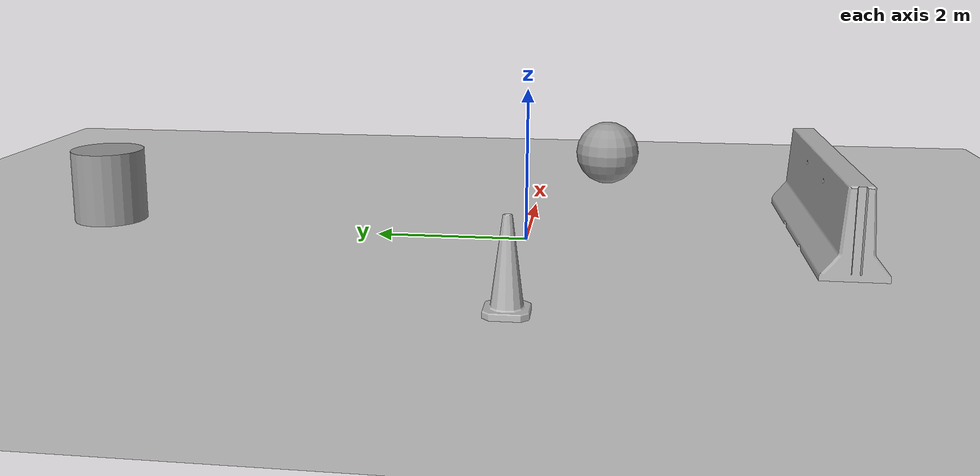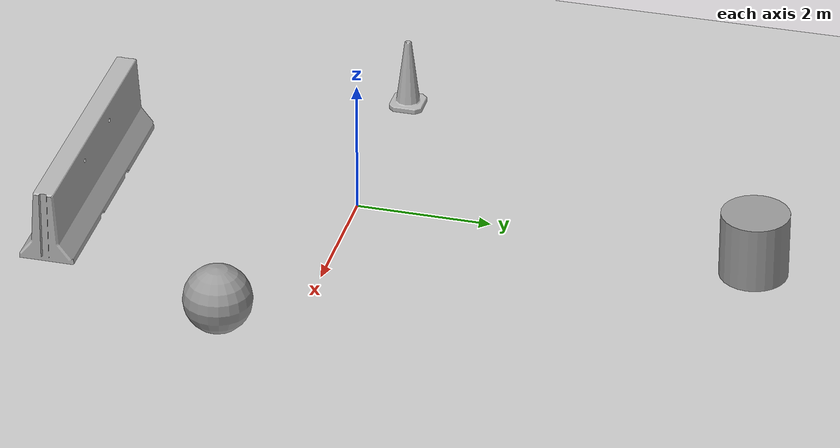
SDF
<sdf version="1.6">
 <world name="default">
  <light name="sun" type="directional">
   <pose>0 0 10 0 -0 0</pose>
   <diffuse>0.8 0.8 0.8 1</diffuse>
   <specular>0.2 0.2 0.2 1</specular>
   <attenuation>
    <range>1000</range>
    <constant>0.9</constant>
    <linear>0.01</linear>
    <quadratic>0.001</quadratic>
   </attenuation>
   <direction>-0.5 0.1 -0.9</direction>
  </light>
  <model name="ground_plane">
   <static>1</static>
   <link name="link">
    <collision name="collision">
     <geometry><plane><normal>0 0 1</normal><size>100 100</size></plane></geometry>
     <surface>
      <contact><collide_bitmask>65535</collide_bitmask></contact>
      <friction><ode><mu>100</mu><mu2>50</mu2></ode></friction>
     </surface>
    </collision>
    <visual name="visual">
     <cast_shadows>0</cast_shadows>
     <geometry><plane><normal>0 0 1</normal><size>100 100</size></plane></geometry>
     <material>
      <script><uri>file://media/materials/scripts/gazebo.material</uri><name>Gazebo/Grey</name></script>
     </material>
    </visual>
   </link>
  </model>
  <gravity>0 0 -9.8</gravity>
  <magnetic_field>6e-06 2.3e-05 -4.2e-05</magnetic_field>
  <atmosphere type="adiabatic"/>
  <physics name="default_physics" default="0" type="ode">
   <max_step_size>0.001</max_step_size>
   <real_time_factor>1</real_time_factor>
   <real_time_update_rate>1000</real_time_update_rate>
  </physics>
  <scene><ambient>0.4 0.4 0.4 1</ambient><background>0.7 0.7 0.7 1</background><shadows>1</shadows></scene>
  <audio><device>default</device></audio>
  <spherical_coordinates>
   <surface_model>EARTH_WGS84</surface_model>
   <latitude_deg>0</latitude_deg>
   <longitude_deg>0</longitude_deg>
   <elevation>0</elevation>
   <heading_deg>0</heading_deg>
  </spherical_coordinates>
  <model name="unit_cylinder">
   <pose>0.334635 5.94525 0.499993 -3e-06 -3e-06 0</pose>
   <link name="link">
    <inertial>
     <mass>1</mass>
     <inertia><ixx>0.145833</ixx><ixy>0</ixy><ixz>0</ixz><iyy>0.145833</iyy><iyz>0</iyz><izz>0.125</izz></inertia>
    </inertial>
    <collision name="collision">
     <geometry><cylinder><radius>0.5</radius><length>1</length></cylinder></geometry>
    </collision>
    <visual name="visual">
     <geometry><cylinder><radius>0.5</radius><length>1</length></cylinder></geometry>
     <material>
      <script><name>Gazebo/Grey</name><uri>file://media/materials/scripts/gazebo.material</uri></script>
     </material>
    </visual>
   </link>
  </model>
  <model name="Construction Cone">
   <link name="link">
    <collision name="collision">
     <geometry>
      <mesh><scale>10 10 10</scale><uri>model://construction_cone/meshes/construction_cone.dae</uri></mesh>
     </geometry>
    </collision>
    <visual name="visual">
     <geometry>
      <mesh><scale>10 10 10</scale><uri>model://construction_cone/meshes/construction_cone.dae</uri></mesh>
     </geometry>
    </visual>
    <inertial>
     <inertia><ixx>1</ixx><ixy>0</ixy><ixz>0</ixz><iyy>1</iyy><iyz>0</iyz><izz>1</izz></inertia>
     <mass>1</mass>
    </inertial>
   </link>
   <pose>-3.00586 -0.022254 -1e-06 -4e-06 0 0</pose>
  </model>
  <model name="jersey_barrier">
   <static>1</static>
   <link name="link">
    <visual name="visual">
     <geometry><mesh><uri>model://jersey_barrier/meshes/jersey_barrier.dae</uri></mesh></geometry>
    </visual>
    <collision name="upright">
     <pose>0 0 0.5715 0 -0 0</pose>
     <geometry><box><size>4.06542 0.3063 1.143</size></box></geometry>
    </collision>
    <collision name="base">
     <pose>0 0 0.032258 0 -0 0</pose>
     <geometry><box><size>4.06542 0.8107 0.064516</size></box></geometry>
    </collision>
    <collision name="base2">
     <pose>0 0 0.1 0 -0 0</pose>
     <geometry><box><size>4.06542 0.65 0.1</size></box></geometry>
    </collision>
    <collision name="base3">
     <pose>0 0 0.2 0 -0 0</pose>
     <geometry><box><size>4.06542 0.5 0.1</size></box></geometry>
    </collision>
    <collision name="left-angle">
     <pose>0 -0.224 0.2401 0.9 -0 0</pose>
     <geometry><box><size>4.06542 0.5 0.064516</size></box></geometry>
    </collision>
    <collision name="right-angle">
     <pose>0 0.224 0.2401 -0.9 0 0</pose>
     <geometry><box><size>4.06542 0.5 0.064516</size></box></geometry>
    </collision>
   </link>
   <pose>0.608905 -3.92012 0 0 -0 0</pose>
  </model>
  <model name="unit_sphere">
   <pose>3.66519 -1.03577 0.5 0 -0 0</pose>
   <link name="link">
    <inertial>
     <mass>1</mass>
     <inertia><ixx>0.1</ixx><ixy>0</ixy><ixz>0</ixz><iyy>0.1</iyy><iyz>0</iyz><izz>0.1</izz></inertia>
    </inertial>
    <collision name="collision"><geometry><sphere><radius>0.5</radius></sphere></geometry></collision>
    <visual name="visual">
     <geometry><sphere><radius>0.5</radius></sphere></geometry>
     <material>
      <script><name>Gazebo/Grey</name><uri>file://media/materials/scripts/gazebo.material</uri></script>
     </material>
    </visual>
   </link>
  </model>
 </world>
</sdf>
